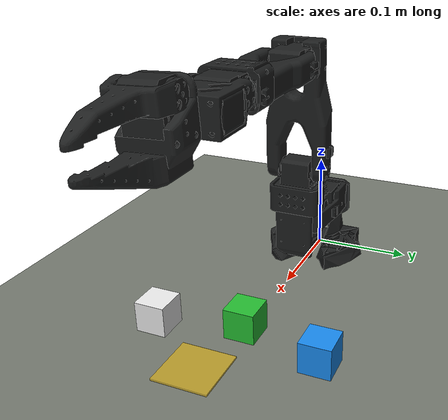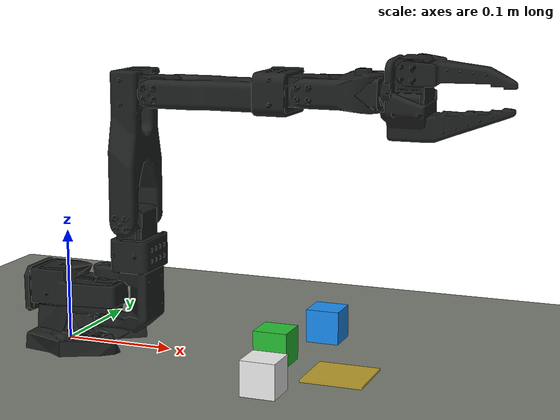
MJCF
<mujoco model="scene">
    <include file="so101_new_calib.xml" />

    <option timestep="0.001" integrator="implicitfast" iterations="200" tolerance="1e-10" />

    <default>
        <default class="task_collision">
            <geom contype="1" conaffinity="1" condim="4" solref="0.01 1" friction="1.2 0.01 0.001"
                solimp="0.999 0.9999 0.00001" />
        </default>
        <default class="box_object">
            <geom type="box" size="0.015 0.015 0.015" mass="0.025"
                contype="1" conaffinity="1" condim="4"
                friction="1.4 0.02 0.001" solref="0.005 1" solimp="0.95 0.99 0.001"
                margin="0.0005" />
        </default>
    </default>

    <visual>
        <headlight diffuse="0.5 0.5 0.5" ambient="0.24 0.24 0.24" specular="0 0 0" />
        <rgba haze="0.15 0.25 0.35 1" />
        <global azimuth="160" elevation="-20" />
    </visual>

    <asset>
        <texture type="skybox" builtin="gradient" rgb1="0.3 0.5 0.7" rgb2="0 0 0" width="512"
            height="3072" />
        <texture type="2d" name="groundplane" builtin="checker" mark="edge" rgb1="0.2 0.3 0.4"
            rgb2="0.1 0.2 0.3"
            markrgb="0.8 0.8 0.8" width="300" height="300" />
        <material name="groundplane" rgba="0.46 0.48 0.44 1" reflectance="0.08" />
        <material name="box_black_matte" rgba="0.12 0.12 0.12 1" reflectance="0.05" />
        <material name="box_green_matte" rgba="0.15 0.75 0.20 1" reflectance="0.08" />
        <material name="box_blue_matte" rgba="0.10 0.55 0.95 1" reflectance="0.08" />
        <material name="box_white_matte" rgba="0.94 0.94 0.94 1" reflectance="0.08" />
        <material name="target_zone_mat" rgba="0.85 0.70 0.15 0.8" reflectance="0.05" />
    </asset>

    <worldbody>
        <light pos="0 0 3.5" dir="0 0 -1" directional="true" />
        <camera name="top_cam" pos="0.22 0 0.80" xyaxes="0 0.999391 -0.0349 -1 0 0" fovy="40" />
        <camera name="front_cam" pos="0.45 0.30 0.20" xyaxes="-0.793884 0.608071 0.000000 -0.237887 -0.310287 0.920275" fovy="52" />
        <geom name="floor" class="task_collision" size="0 0 0.05" pos="0 0 0" type="plane" material="groundplane"
            friction="0.03 0.03 0.001" />

        <!-- Khu vực đích đánh dấu vị trí xếp chồng (Stacking Target Zone) - Căn trong ô C4, sát đường giao ô C4 và D4 (kích thước thu nhỏ 2/3) -->
        <site name="stack_target_zone" pos="0.264 -0.0175 0.001" size="0.0267 0.0267 0.001" type="box" material="target_zone_mat" />

        <!-- Khối 1: Màu TRẮNG (Đặt ở đáy) - Kích thước 30 x 30 x 30 mm -->
        <body name="box_white" pos="0.22 -0.08 0.015">
            <freejoint name="box_white_joint" />
            <geom name="box_white_geom" class="box_object" material="box_white_matte" />
        </body>

        <!-- Khối 2: Màu XANH LÁ (Đặt ở giữa) - Kích thước 30 x 30 x 30 mm -->
        <body name="box_green" pos="0.20 0.0 0.015">
            <freejoint name="box_green_joint" />
            <geom name="box_green_geom" class="box_object" material="box_green_matte" />
        </body>

        <!-- Khối 3: Màu XANH NƯỚC BIỂN (Đặt ở trên cùng) - Kích thước 30 x 30 x 30 mm -->
        <body name="box_blue" pos="0.22 0.08 0.015">
            <freejoint name="box_blue_joint" />
            <geom name="box_blue_geom" class="box_object" material="box_blue_matte" />
        </body>
    </worldbody>
</mujoco>

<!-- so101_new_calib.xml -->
<!-- Generated using onshape-to-robot -->
<!-- Onshape https://cad.onshape.com/documents/7715cc284bb430fe6dab4ffd/w/4fd0791b683777b02f8d975a/e/826c553ede3b7592eb9ca800 -->
<mujoco model="so101_new_calib">
  <compiler angle="radian" meshdir="assets" autolimits="true"/>
  <default>
    <default class="so101_new_calib">
      <joint damping="1" frictionloss="0.1" armature="0.005"/>
      <position kp="50"/>
      <default class="visual">
        <geom type="mesh" contype="0" conaffinity="0" group="2"/>
      </default>
      <default class="collision">
        <!-- CAD mesh collisions are enabled for the arm body. Gripper CAD mesh
             collisions are disabled per-geom below; primitive pads handle grasping. -->
        <geom group="3" contype="1" conaffinity="1"/>
      </default>
      <default class="gripper_collision">
        <geom type="box" group="1" contype="1" conaffinity="1" friction="1.0 0.01 0.001"
solref="0.002 1"
solimp="0.9 0.95 0.001" rgba="0 0 0 0"/>
      </default>
    </default>
  </default>
  <!-- Additional joints_properties.xml -->
  <default>
    <default class="sts3215">
      <geom contype="0" conaffinity="0"/>
      <joint damping="0.60" frictionloss="0.052" armature="0.028"/>
      <position kp="998.22" kv="2.731" forcerange="-2.94 2.94"/>
    </default>
    <default class="backlash">
      <!-- +/- 0.5° of backlash -->
      <joint damping="0.01" frictionloss="0" armature="0.01" limited="true" range="-0.008726646259971648 0.008726646259971648"/>
    </default>
  </default>
  <worldbody>
    <!-- Link base -->
    <body name="base" pos="0 0 0" quat="1 0 0 0" childclass="so101_new_calib">
      <inertial pos="0.0137179 -5.19711e-05 0.0334843" mass="0.147" fullinertia="0.000114686 0.000136117 0.000130364 -4.59787e-07 4.97151e-06 9.75275e-08"/>
      <!-- Part base_motor_holder_so101_v1 -->
      <geom type="mesh" class="visual" pos="-0.00636471 -9.94414e-05 -0.0024" quat="0.5 0.5 0.5 0.5" mesh="base_motor_holder_so101_v1" material="base_motor_holder_so101_v1_material"/>
      <!-- Part base_so101_v2 -->
      <geom type="mesh" class="visual" pos="-0.00636471 -8.97657e-09 -0.0024" quat="0.5 0.5 0.5 0.5" mesh="base_so101_v2" material="base_so101_v2_material"/>
      <!-- Part sts3215_03a_v1 -->
      <geom type="mesh" class="visual" pos="0.0263353 -8.97657e-09 0.0437" quat="1 -2.85511e-16 -9.64433e-17 6.12908e-16" mesh="sts3215_03a_v1" material="sts3215_03a_v1_material"/>
      <!-- Part waveshare_mounting_plate_so101_v2 -->
      <geom type="mesh" class="visual" pos="-0.0309827 -0.000199441 0.0474" quat="0.5 0.5 0.5 0.5" mesh="waveshare_mounting_plate_so101_v2" material="waveshare_mounting_plate_so101_v2_material"/>
      <!-- Frame baseframe -->
      <site group="3" name="baseframe" pos="8.67362e-19 9.55596e-18 3.46945e-18" quat="1 -8.17396e-19 3.78392e-17 2.22045e-16"/>
      <!-- Link shoulder -->
      <body name="shoulder" pos="0.0388353 -8.97657e-09 0.0624" quat="3.56167e-16 1.22818e-15 -1 -4.14635e-16">
        <!-- Joint from base to shoulder -->
        <joint axis="0 0 1" name="shoulder_pan" type="hinge" range="-1.9198621771937616 1.9198621771937634" class="sts3215"/>
        <inertial pos="-0.0307604 -1.66727e-05 -0.0252713" mass="0.100006" fullinertia="8.3759e-05 8.10403e-05 2.39783e-05 7.55525e-08 -1.16342e-06 1.54663e-07"/>
        <!-- Part sts3215_03a_v1_2 -->
        <geom type="mesh" class="visual" pos="-0.0303992 0.000422241 -0.0417" quat="0.5 0.5 0.5 -0.5" mesh="sts3215_03a_v1" material="sts3215_03a_v1_material"/>
        <geom type="mesh" class="collision" pos="-0.0303992 0.000422241 -0.0417" quat="0.5 0.5 0.5 -0.5" mesh="sts3215_03a_v1" material="sts3215_03a_v1_material"/>
        <!-- Part motor_holder_so101_base_v1 -->
        <geom type="mesh" class="visual" pos="-0.0675992 -0.000177759 0.0158499" quat="0.5 0.5 -0.5 0.5" mesh="motor_holder_so101_base_v1" material="motor_holder_so101_base_v1_material"/>
        <geom type="mesh" class="collision" pos="-0.0675992 -0.000177759 0.0158499" quat="0.5 0.5 -0.5 0.5" mesh="motor_holder_so101_base_v1" material="motor_holder_so101_base_v1_material"/>
        <!-- Part rotation_pitch_so101_v1 -->
        <geom type="mesh" class="visual" pos="0.0122008 2.22413e-05 0.0464" quat="0.707107 -0.707107 -0 8.3163e-34" mesh="rotation_pitch_so101_v1" material="rotation_pitch_so101_v1_material"/>
        <geom type="mesh" class="collision" pos="0.0122008 2.22413e-05 0.0464" quat="0.707107 -0.707107 -0 8.3163e-34" mesh="rotation_pitch_so101_v1" material="rotation_pitch_so101_v1_material"/>
        <!-- Link upper_arm -->
        <body name="upper_arm" pos="-0.0303992 -0.0182778 -0.0542" quat="0.5 -0.5 -0.5 -0.5">
          <!-- Joint from shoulder to upper_arm -->
          <joint axis="0 0 1" name="shoulder_lift" type="hinge" range="-1.7453292519943224 1.7453292519943366" class="sts3215"/>
          <inertial pos="-0.0898471 -0.00838224 0.0184089" mass="0.103" fullinertia="4.08002e-05 0.000147318 0.000142487 -1.97819e-05 -4.03016e-08 8.97326e-09"/>
          <!-- Part sts3215_03a_v1_3 -->
          <geom type="mesh" class="visual" pos="-0.11257 -0.0155 0.0187" quat="4.56308e-16 -0.707107 0.707107 -1.37383e-16" mesh="sts3215_03a_v1" material="sts3215_03a_v1_material"/>
          <geom type="mesh" class="collision" pos="-0.11257 -0.0155 0.0187" quat="4.56308e-16 -0.707107 0.707107 -1.37383e-16" mesh="sts3215_03a_v1" material="sts3215_03a_v1_material"/>
          <!-- Part upper_arm_so101_v1 -->
          <geom type="mesh" class="visual" pos="-0.065085 0.012 0.0182" quat="0 1 0 0" mesh="upper_arm_so101_v1" material="upper_arm_so101_v1_material"/>
          <geom type="mesh" class="collision" pos="-0.065085 0.012 0.0182" quat="0 1 0 0" mesh="upper_arm_so101_v1" material="upper_arm_so101_v1_material"/>
          <!-- Link lower_arm -->
          <body name="lower_arm" pos="-0.11257 -0.028 1.73763e-16" quat="0.707107 -5.98613e-17 -2.58051e-17 0.707107">
            <!-- Joint from upper_arm to lower_arm -->
            <!-- Note: 5-degree calibration offset applied to joint range -->
            <joint axis="0 0 1" name="elbow_flex" type="hinge" range="-1.69 1.69" class="sts3215"/>
            <inertial pos="-0.0980701 0.00324376 0.0182831" mass="0.104" fullinertia="2.87438e-05 0.000159844 0.00014529 7.41152e-06 1.26409e-06 -4.90188e-08"/>
            <!-- Part under_arm_so101_v1 -->
            <geom type="mesh" class="visual" pos="-0.0648499 -0.032 0.0182" quat="0 1 0 0" mesh="under_arm_so101_v1" material="under_arm_so101_v1_material"/>
            <geom type="mesh" class="collision" pos="-0.0648499 -0.032 0.0182" quat="0 1 0 0" mesh="under_arm_so101_v1" material="under_arm_so101_v1_material"/>
            <!-- Part motor_holder_so101_wrist_v1 -->
            <geom type="mesh" class="visual" pos="-0.0648499 -0.032 0.018" quat="3.92687e-16 -1 -1.9186e-15 -6.38378e-16" mesh="motor_holder_so101_wrist_v1" material="motor_holder_so101_wrist_v1_material"/>
            <geom type="mesh" class="collision" pos="-0.0648499 -0.032 0.018" quat="3.92687e-16 -1 -1.9186e-15 -6.38378e-16" mesh="motor_holder_so101_wrist_v1" material="motor_holder_so101_wrist_v1_material"/>
            <!-- Part sts3215_03a_v1_4 -->
            <geom type="mesh" class="visual" pos="-0.1224 0.0052 0.0187" quat="7.21645e-16 1.56949e-15 1 -3.33067e-16" mesh="sts3215_03a_v1" material="sts3215_03a_v1_material"/>
            <geom type="mesh" class="collision" pos="-0.1224 0.0052 0.0187" quat="7.21645e-16 1.56949e-15 1 -3.33067e-16" mesh="sts3215_03a_v1" material="sts3215_03a_v1_material"/>
            <!-- Link wrist -->
            <body name="wrist" pos="-0.1349 0.0052 3.62355e-17" quat="0.707107 9.58722e-16 -7.51313e-16 -0.707107">
              <!-- Joint from lower_arm to wrist -->
              <joint axis="0 0 1" name="wrist_flex" type="hinge" range="-1.6580628494556928 1.6580627293335335" class="sts3215"/>
              <inertial pos="-0.000103312 -0.0386143 0.0281156" mass="0.079" fullinertia="3.68263e-05 2.5391e-05 2.1e-05 1.7893e-08 -5.28128e-08 3.6412e-06"/>
              <!-- Part sts3215_03a_no_horn_v1 -->
              <geom type="mesh" class="visual" pos="8.32667e-17 -0.0424 0.0306" quat="0.5 0.5 0.5 -0.5" mesh="sts3215_03a_no_horn_v1" material="sts3215_03a_no_horn_v1_material"/>
              <geom type="mesh" class="collision" pos="8.32667e-17 -0.0424 0.0306" quat="0.5 0.5 0.5 -0.5" mesh="sts3215_03a_no_horn_v1" material="sts3215_03a_no_horn_v1_material"/>
              <!-- Part wrist_roll_pitch_so101_v2 -->
              <geom type="mesh" class="visual" pos="0 -0.028 0.0181" quat="0.5 -0.5 -0.5 -0.5" mesh="wrist_roll_pitch_so101_v2" material="wrist_roll_pitch_so101_v2_material"/>
              <geom type="mesh" class="collision" pos="0 -0.028 0.0181" quat="0.5 -0.5 -0.5 -0.5" mesh="wrist_roll_pitch_so101_v2" material="wrist_roll_pitch_so101_v2_material"/>
              <!-- Link gripper -->
              <body name="gripper" pos="5.55112e-17 -0.0611 0.0181" quat="0.0172091 -0.0172091 0.706897 0.706897">
                <!-- Joint from wrist to gripper -->
                <joint axis="0 0 1" name="wrist_roll" type="hinge" range="-2.7438472969992493 2.841206309382605" class="sts3215"/>
                <inertial pos="0.000213627 0.000245138 -0.025187" mass="0.087" fullinertia="2.75087e-05 4.33657e-05 3.45059e-05 -3.35241e-07 -5.7352e-06 -5.17847e-08"/>
                <!-- Part sts3215_03a_v1_5 -->
                <geom type="mesh" class="visual" pos="0.0077 0.0001 -0.0234" quat="0.707107 -0.707107 1.66015e-15 6.45094e-15" mesh="sts3215_03a_v1" material="sts3215_03a_v1_material"/>
                <geom type="mesh" class="collision" contype="0" conaffinity="0" pos="0.0077 0.0001 -0.0234" quat="0.707107 -0.707107 1.66015e-15 6.45094e-15" mesh="sts3215_03a_v1" material="sts3215_03a_v1_material"/>
                <!-- Part wrist_roll_follower_so101_v1 -->
                <geom type="mesh" class="visual" pos="8.32667e-17 -0.000218214 0.000949706" quat="0 1 0 0" mesh="wrist_roll_follower_so101_v1" material="wrist_roll_follower_so101_v1_material"/>
                <geom type="mesh" class="collision" contype="0" conaffinity="0" pos="8.32667e-17 -0.000218214 0.000949706" quat="0 1 0 0" mesh="wrist_roll_follower_so101_v1" material="wrist_roll_follower_so101_v1_material"/>
                <!-- Fixed jaw contact pad. This primitive is the physical
                     contact surface used for grasping; the STL above is visual. -->
                <geom name="fixed_gripper_pad_collision_1" class="gripper_collision"
                      pos="-0.008 0.000 -0.1" size="0.00025 0.0008 0.002"/>
                <geom name="fixed_gripper_pad_collision_2" class="gripper_collision"
                      pos="-0.008 0.001 -0.1" size="0.00025 0.0008 0.002"/>
                <geom name="fixed_gripper_pad_collision_3" class="gripper_collision"
                      pos="-0.008 -0.001 -0.1" size="0.00025 0.0008 0.002"/>
                <geom name="fixed_gripper_pad_collision_4" class="gripper_collision"
                      pos="-0.008 -0.002 -0.1" size="0.00025 0.0008 0.002"/>
                <geom name="fixed_gripper_pad_collision_5" class="gripper_collision"
                      pos="-0.008 -0.003 -0.1" size="0.00025 0.0004 0.002"/>
                <geom name="fixed_gripper_pad_collision_6" class="gripper_collision"
                      pos="-0.008 0.002 -0.1" size="0.00025 0.0008 0.002"/>
                <geom name="fixed_gripper_pad_collision_7" class="gripper_collision"
                      pos="-0.008 0.003 -0.1" size="0.00025 0.0002 0.002"/>
                <geom name="fixed_gripper_pad_collision_12" class="gripper_collision"
                      pos="-0.008 0.000 -0.1025" size="0.00025 0.0008 0.002"/>
                <geom name="fixed_gripper_pad_collision_22" class="gripper_collision"
                      pos="-0.008 0.001 -0.1025" size="0.00025 0.0008 0.002"/>
                <geom name="fixed_gripper_pad_collision_32" class="gripper_collision"
                      pos="-0.008 -0.001 -0.1025" size="0.00025 0.0006 0.002"/>
                <geom name="fixed_gripper_pad_collision_13" class="gripper_collision"
                      pos="-0.008 0.000 -0.0975" size="0.00025 0.0008 0.002"/>
                <geom name="fixed_gripper_pad_collision_23" class="gripper_collision"
                      pos="-0.008 0.001 -0.0975" size="0.00025 0.0008 0.002"/>
                <geom name="fixed_gripper_pad_collision_33" class="gripper_collision"
                      pos="-0.008 -0.001 -0.0975" size="0.00025 0.0008 0.002"/>
                <geom name="fixed_gripper_pad_collision_43" class="gripper_collision"
                      pos="-0.008 -0.002 -0.0975" size="0.00025 0.0008 0.002"/>
                <geom name="fixed_gripper_pad_collision_53" class="gripper_collision"
                      pos="-0.008 -0.003 -0.0975" size="0.00025 0.0008 0.002"/>
                <geom name="fixed_gripper_pad_collision_63" class="gripper_collision"
                      pos="-0.008 0.002 -0.0975" size="0.00025 0.0008 0.002"/>
                <geom name="fixed_gripper_pad_collision_73" class="gripper_collision"
                      pos="-0.008 0.003 -0.0975" size="0.00025 0.0008 0.002"/>
                <geom name="fixed_gripper_pad_collision_83" class="gripper_collision"
                      pos="-0.008 -0.004 -0.0975" size="0.00025 0.0004 0.002"/>
                <geom name="fixed_gripper_pad_collision_93" class="gripper_collision"
                      pos="-0.008 0.004 -0.0975" size="0.00025 0.0002 0.002"/>
                 <geom name="fixed_gripper_pad_collision_14" class="gripper_collision"
                      pos="-0.008 0.000 -0.095" size="0.00025 0.0008 0.002"/>
                <geom name="fixed_gripper_pad_collision_24" class="gripper_collision"
                      pos="-0.008 0.001 -0.095" size="0.00025 0.0008 0.002"/>
                <geom name="fixed_gripper_pad_collision_34" class="gripper_collision"
                      pos="-0.008 -0.001 -0.095" size="0.00025 0.0008 0.002"/>
                <geom name="fixed_gripper_pad_collision_44" class="gripper_collision"
                      pos="-0.008 -0.002 -0.095" size="0.00025 0.0008 0.002"/>
                <geom name="fixed_gripper_pad_collision_54" class="gripper_collision"
                      pos="-0.008 -0.003 -0.095" size="0.00025 0.0008 0.002"/>
                <geom name="fixed_gripper_pad_collision_64" class="gripper_collision"
                      pos="-0.008 0.002 -0.095" size="0.00025 0.0008 0.002"/>
                <geom name="fixed_gripper_pad_collision_74" class="gripper_collision"
                      pos="-0.008 0.003 -0.095" size="0.00025 0.0008 0.002"/>
                <geom name="fixed_gripper_pad_collision_84" class="gripper_collision"
                      pos="-0.008 -0.004 -0.095" size="0.00025 0.0008 0.002"/>
                <geom name="fixed_gripper_pad_collision_94" class="gripper_collision"
                      pos="-0.008 0.004 -0.095" size="0.00025 0.0008 0.002"/>

                <!-- Frame gripperframe -->
                <site group="3" name="gripperframe" pos="-0.0079 -0.000218121 -0.0981274" quat="0.707107 -0 0.707107 -2.37788e-17"/>
                <!-- Link moving_jaw_so101_v1 -->
                <body name="moving_jaw_so101_v1" pos="0.0202 0.0188 -0.0234" quat="0.707107 0.707107 -1.85362e-08 1.85362e-08">
                  <!-- Joint from gripper to moving_jaw_so101_v1 -->
                  <joint axis="0 0 1" name="gripper" type="hinge" range="-0.17453297762778586 1.7453291995659765" class="sts3215"/>
                  <inertial pos="-0.00157495 -0.0300244 0.0192755" mass="0.012" fullinertia="6.61427e-06 1.89032e-06 5.28738e-06 -3.19807e-07 -5.90717e-09 -1.09945e-07"/>
                  <!-- Part moving_jaw_so101_v1 -->
                  <geom type="mesh" class="visual" pos="-5.55112e-17 -5.55112e-17 0.0189" quat="1 -0 3.00524e-16 -2.00834e-17" mesh="moving_jaw_so101_v1" material="moving_jaw_so101_v1_material"/>
                  <geom type="mesh" class="collision" contype="0" conaffinity="0" pos="-5.55112e-17 -5.55112e-17 0.0189" quat="1 -0 3.00524e-16 -2.00834e-17" mesh="moving_jaw_so101_v1" material="moving_jaw_so101_v1_material"/>
                  <!-- Moving jaw contact pad. Tune pos/size against the visual
                       mesh if your CAD/calibration changes. -->
                  <geom name="moving_gripper_pad_collision_1" class="gripper_collision"
                        pos="-0.01225 -0.080 0.0185" size="0.00025 0.0008 0.002"/>
                  <geom name="moving_gripper_pad_collision_2" class="gripper_collision"
                        pos="-0.01225 -0.080 0.0195" size="0.00025 0.0008 0.002"/>
                  <geom name="moving_gripper_pad_collision_3" class="gripper_collision"
                        pos="-0.01225 -0.080 0.0205" size="0.00025 0.0008 0.002"/>
                  <geom name="moving_gripper_pad_collision_4" class="gripper_collision"
                        pos="-0.01225 -0.080 0.0175" size="0.00025 0.0008 0.002"/>
                  <geom name="moving_gripper_pad_collision_5" class="gripper_collision"
                        pos="-0.01225 -0.080 0.0165" size="0.00025 0.0008 0.002"/>
                  <geom name="moving_gripper_pad_collision_12" class="gripper_collision"
                        pos="-0.01225 -0.0725 0.0185" size="0.00025 0.0008 0.002"/>
                  <geom name="moving_gripper_pad_collision_22" class="gripper_collision"
                        pos="-0.01225 -0.0725 0.0195" size="0.00025 0.0008 0.002"/>
                  <geom name="moving_gripper_pad_collision_32" class="gripper_collision"
                        pos="-0.01225 -0.0725 0.0205" size="0.00025 0.0008 0.002"/>
                  <geom name="moving_gripper_pad_collision_42" class="gripper_collision"
                        pos="-0.01225 -0.0725 0.0175" size="0.00025 0.0008 0.002"/>
                  <geom name="moving_gripper_pad_collision_52" class="gripper_collision"
                        pos="-0.01225 -0.0725 0.0165" size="0.00025 0.0008 0.002"/>
                  <geom name="moving_gripper_pad_collision_62" class="gripper_collision"
                        pos="-0.01225 -0.0725 0.0155" size="0.00025 0.0008 0.002"/>
                  <geom name="moving_gripper_pad_collision_72" class="gripper_collision"
                        pos="-0.01225 -0.0725 0.0145" size="0.00025 0.0008 0.002"/>
                  <geom name="moving_gripper_pad_collision_82" class="gripper_collision"
                        pos="-0.01225 -0.0725 0.0215" size="0.00025 0.0008 0.002"/>
                  <geom name="moving_gripper_pad_collision_92" class="gripper_collision"
                        pos="-0.01225 -0.0725 0.0225" size="0.00025 0.0008 0.002"/>
                  <geom name="moving_gripper_pad_collision_13" class="gripper_collision"
                        pos="-0.01225 -0.0775 0.0185" size="0.00025 0.0008 0.002"/>
                  <geom name="moving_gripper_pad_collision_23" class="gripper_collision"
                        pos="-0.01225 -0.0775 0.0195" size="0.00025 0.0008 0.002"/>
                  <geom name="moving_gripper_pad_collision_33" class="gripper_collision"
                        pos="-0.01225 -0.0775 0.0205" size="0.00025 0.0008 0.002"/>
                  <geom name="moving_gripper_pad_collision_43" class="gripper_collision"
                        pos="-0.01225 -0.0775 0.0175" size="0.00025 0.0008 0.002"/>
                  <geom name="moving_gripper_pad_collision_53" class="gripper_collision"
                        pos="-0.01225 -0.0775 0.0165" size="0.00025 0.0008 0.002"/>
                  <geom name="moving_gripper_pad_collision_63" class="gripper_collision"
                        pos="-0.01225 -0.0775 0.0215" size="0.00025 0.0008 0.002"/>
                  <geom name="moving_gripper_pad_collision_73" class="gripper_collision"
                        pos="-0.01225 -0.0775 0.0155" size="0.00025 0.0008 0.002"/>
                  <geom name="moving_gripper_pad_collision_14" class="gripper_collision"
                        pos="-0.01225 -0.075 0.0185" size="0.00025 0.0008 0.002"/>
                  <geom name="moving_gripper_pad_collision_24" class="gripper_collision"
                        pos="-0.01225 -0.075 0.0195" size="0.00025 0.0008 0.002"/>
                  <geom name="moving_gripper_pad_collision_34" class="gripper_collision"
                        pos="-0.01225 -0.075 0.0205" size="0.00025 0.0008 0.002"/>
                  <geom name="moving_gripper_pad_collision_44" class="gripper_collision"
                        pos="-0.01225 -0.075 0.0175" size="0.00025 0.0008 0.002"/>
                  <geom name="moving_gripper_pad_collision_54" class="gripper_collision"
                        pos="-0.01225 -0.075 0.0165" size="0.00025 0.0008 0.002"/>
                  <geom name="moving_gripper_pad_collision_64" class="gripper_collision"
                        pos="-0.01225 -0.075 0.0155" size="0.00025 0.0008 0.002"/>
                  <geom name="moving_gripper_pad_collision_74" class="gripper_collision"
                        pos="-0.01225 -0.075 0.0145" size="0.00025 0.0008 0.002"/>
                  <geom name="moving_gripper_pad_collision_84" class="gripper_collision"
                        pos="-0.01225 -0.075 0.0215" size="0.00025 0.0008 0.002"/>
                  <geom name="moving_gripper_pad_collision_94" class="gripper_collision"
                        pos="-0.01225 -0.075 0.0225" size="0.00025 0.0008 0.002"/>

                </body>
              </body>
            </body>
          </body>
        </body>
      </body>
    </body>
  </worldbody>
  <asset>
    <mesh file="waveshare_mounting_plate_so101_v2.stl"/>
    <mesh file="sts3215_03a_v1.stl"/>
    <mesh file="motor_holder_so101_base_v1.stl"/>
    <mesh file="wrist_roll_follower_so101_v1.stl"/>
    <mesh file="moving_jaw_so101_v1.stl"/>
    <mesh file="base_motor_holder_so101_v1.stl"/>
    <mesh file="upper_arm_so101_v1.stl"/>
    <mesh file="wrist_roll_pitch_so101_v2.stl"/>
    <mesh file="under_arm_so101_v1.stl"/>
    <mesh file="rotation_pitch_so101_v1.stl"/>
    <mesh file="motor_holder_so101_wrist_v1.stl"/>
    <mesh file="sts3215_03a_no_horn_v1.stl"/>
    <mesh file="base_so101_v2.stl"/>
    <material name="base_motor_holder_so101_v1_material" rgba="0.12 0.125 0.125 1"/>
    <material name="base_so101_v2_material" rgba="0.12 0.125 0.125 1"/>
    <material name="sts3215_03a_v1_material" rgba="0.12 0.125 0.125 1"/>
    <material name="waveshare_mounting_plate_so101_v2_material" rgba="0.12 0.125 0.125 1"/>
    <material name="motor_holder_so101_base_v1_material" rgba="0.12 0.125 0.125 1"/>
    <material name="rotation_pitch_so101_v1_material" rgba="0.12 0.125 0.125 1"/>
    <material name="upper_arm_so101_v1_material" rgba="0.12 0.125 0.125 1"/>
    <material name="under_arm_so101_v1_material" rgba="0.12 0.125 0.125 1"/>
    <material name="motor_holder_so101_wrist_v1_material" rgba="0.12 0.125 0.125 1"/>
    <material name="sts3215_03a_no_horn_v1_material" rgba="0.12 0.125 0.125 1"/>
    <material name="wrist_roll_pitch_so101_v2_material" rgba="0.12 0.125 0.125 1"/>
    <material name="wrist_roll_follower_so101_v1_material" rgba="0.12 0.125 0.125 1"/>
    <material name="moving_jaw_so101_v1_material" rgba="0.12 0.125 0.125 1"/>
  </asset>
  <actuator>
    <position class="sts3215" name="shoulder_pan" joint="shoulder_pan" forcerange="-3.35 3.35" ctrlrange="-1.91986 1.91986"/>
    <position class="sts3215" name="shoulder_lift" joint="shoulder_lift" forcerange="-3.35 3.35" ctrlrange="-1.74533 1.74533"/>
    <position class="sts3215" name="elbow_flex" joint="elbow_flex" forcerange="-3.35 3.35" ctrlrange="-1.69 1.69"/>
    <position class="sts3215" name="wrist_flex" joint="wrist_flex" forcerange="-3.35 3.35" ctrlrange="-1.65806 1.65806"/>
    <position class="sts3215" name="wrist_roll" joint="wrist_roll" forcerange="-3.35 3.35" ctrlrange="-2.74385 2.84121"/>
    <position class="sts3215" name="gripper" joint="gripper"
          kp="150" kv="1.5"
          forcerange="-1.0 1.0"
          ctrlrange="-0.17453 1.74533"/>
  </actuator>
  <equality/>
</mujoco>
